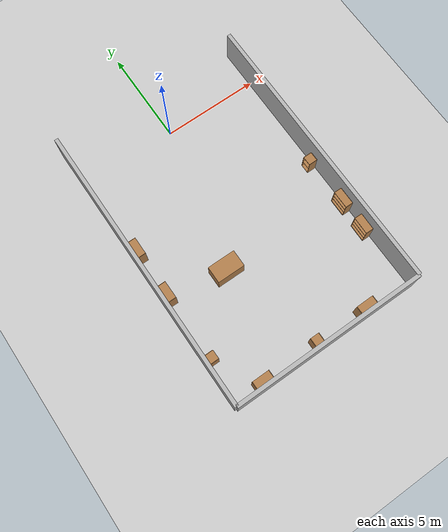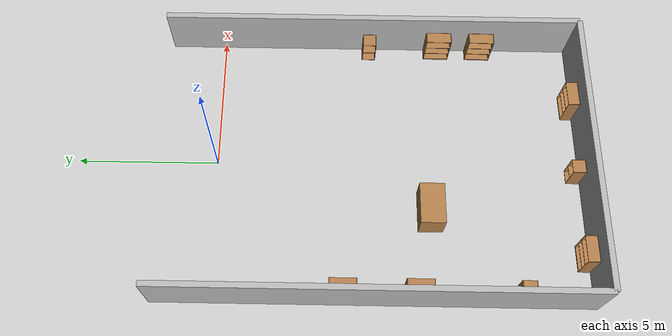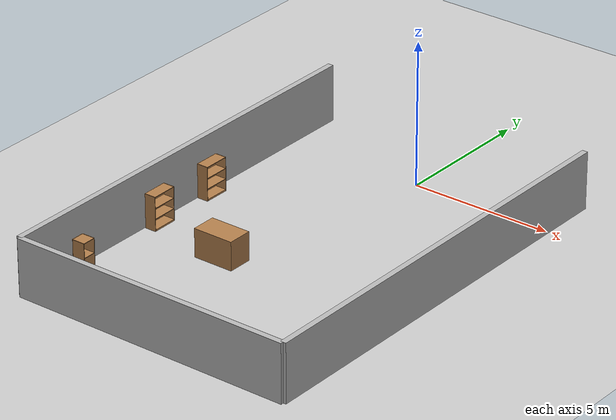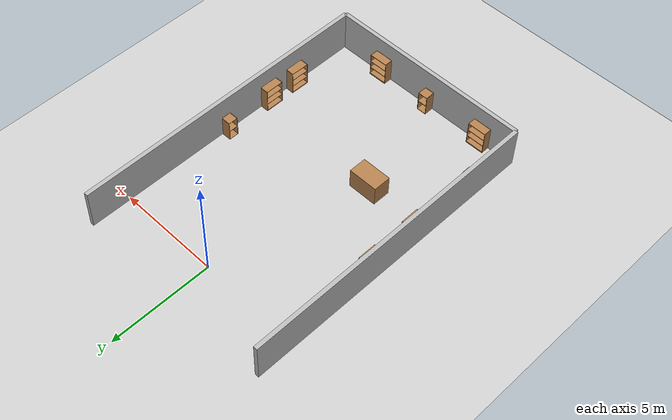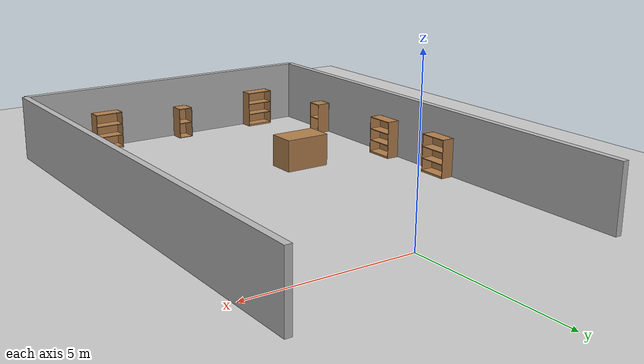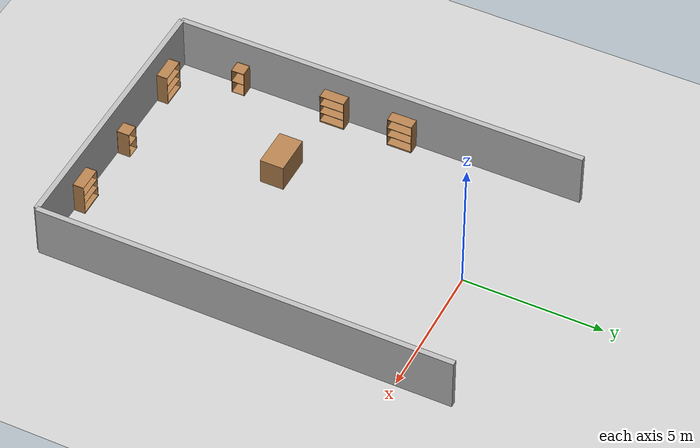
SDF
<sdf version="1.7">
 <world name="default">
  <model name="ground_plane">
   <static>1</static>
   <link name="link">
    <collision name="collision">
     <geometry><plane><normal>0 0 1</normal><size>100 100</size></plane></geometry>
     <surface><friction><ode><mu>100</mu><mu2>50</mu2></ode></friction></surface>
    </collision>
    <visual name="visual">
     <cast_shadows>0</cast_shadows>
     <geometry><plane><normal>0 0 1</normal><size>100 100</size></plane></geometry>
     <material>
      <script><uri>file://media/materials/scripts/gazebo.material</uri><name>Gazebo/Grey</name></script>
     </material>
    </visual>
    <velocity_decay><linear>0</linear><angular>0</angular></velocity_decay>
   </link>
  </model>
  <model name="wall_1_model">
   <pose>0 -13 1 0 -0 0</pose>
   <static>1</static>
   <link name="wall_1_body">
    <inertial>
     <mass>1</mass>
     <inertia><ixx>1</ixx><ixy>0</ixy><ixz>0</ixz><iyy>1</iyy><iyz>0</iyz><izz>1</izz></inertia>
    </inertial>
    <collision name="collision"><geometry><box><size>10 0.2 2</size></box></geometry></collision>
    <visual name="visual"><geometry><box><size>10 0.2 2</size></box></geometry></visual>
    <velocity_decay><linear>0</linear><angular>0</angular></velocity_decay>
   </link>
  </model>
  <model name="wall_3_model">
   <pose>-5 -5.5 1 0 -0 0</pose>
   <static>1</static>
   <link name="wall_3_body">
    <inertial>
     <mass>1</mass>
     <inertia><ixx>1</ixx><ixy>0</ixy><ixz>0</ixz><iyy>1</iyy><iyz>0</iyz><izz>1</izz></inertia>
    </inertial>
    <collision name="collision"><geometry><box><size>0.2 15 2</size></box></geometry></collision>
    <visual name="visual"><geometry><box><size>0.2 15 2</size></box></geometry></visual>
    <velocity_decay><linear>0</linear><angular>0</angular></velocity_decay>
   </link>
  </model>
  <model name="wall_4_model">
   <pose>5 -5.5 1 0 -0 0</pose>
   <static>1</static>
   <link name="wall_4_body">
    <inertial>
     <mass>1</mass>
     <inertia><ixx>1</ixx><ixy>0</ixy><ixz>0</ixz><iyy>1</iyy><iyz>0</iyz><izz>1</izz></inertia>
    </inertial>
    <collision name="collision"><geometry><box><size>0.2 15 2</size></box></geometry></collision>
    <visual name="visual"><geometry><box><size>0.2 15 2</size></box></geometry></visual>
    <velocity_decay><linear>0</linear><angular>0</angular></velocity_decay>
   </link>
  </model>
  <model name="cabinet_0">
   <static>0</static>
   <link name="cabinet_bottom_plate">
    <inertial>
     <pose>0 0 -1 0 -0 0</pose>
     <inertia><ixx>2.05</ixx><ixy>0</ixy><ixz>0</ixz><iyy>2.05</iyy><iyz>0</iyz><izz>2.05</izz></inertia>
     <mass>25</mass>
    </inertial>
    <collision name="cabinet_bottom_plate_geom">
     <pose>0 0 0.01 0 -0 0</pose>
     <geometry><box><size>0.45 0.45 0.02</size></box></geometry>
    </collision>
    <visual name="cabinet_bottom_plate_geom_visual">
     <pose>0 0 0.01 0 -0 0</pose>
     <geometry><box><size>0.45 0.45 0.02</size></box></geometry>
     <material>
      <script><uri>file://media/materials/scripts/gazebo.material</uri><name>Gazebo/Wood</name></script>
     </material>
    </visual>
    <collision name="cabinet_bottom_plate_geom_cabinet_back_plate">
     <pose>0.235 0 0.51 0 -0 0</pose>
     <geometry><box><size>0.02 0.45 1.02</size></box></geometry>
    </collision>
    <visual name="cabinet_bottom_plate_geom_cabinet_back_plate_visual">
     <pose>0.235 0 0.51 0 -0 0</pose>
     <geometry><box><size>0.02 0.45 1.02</size></box></geometry>
     <material>
      <script><uri>file://media/materials/scripts/gazebo.material</uri><name>Gazebo/Wood</name></script>
     </material>
    </visual>
    <collision name="cabinet_bottom_plate_geom_cabinet_left_plate">
     <pose>0 0.235 0.51 0 -0 0</pose>
     <geometry><box><size>0.45 0.02 1.02</size></box></geometry>
    </collision>
    <visual name="cabinet_bottom_plate_geom_cabinet_left_plate_visual">
     <pose>0 0.235 0.51 0 -0 0</pose>
     <geometry><box><size>0.45 0.02 1.02</size></box></geometry>
     <material>
      <script><uri>file://media/materials/scripts/gazebo.material</uri><name>Gazebo/Wood</name></script>
     </material>
    </visual>
    <collision name="cabinet_bottom_plate_geom_cabinet_middle_plate">
     <pose>0 0 0.51 0 -0 0</pose>
     <geometry><box><size>0.45 0.45 0.02</size></box></geometry>
    </collision>
    <visual name="cabinet_bottom_plate_geom_cabinet_middle_plate_visual">
     <pose>0 0 0.51 0 -0 0</pose>
     <geometry><box><size>0.45 0.45 0.02</size></box></geometry>
     <material>
      <script><uri>file://media/materials/scripts/gazebo.material</uri><name>Gazebo/Wood</name></script>
     </material>
    </visual>
    <collision name="cabinet_bottom_plate_geom_cabinet_right_plate">
     <pose>0 -0.235 0.51 0 -0 0</pose>
     <geometry><box><size>0.45 0.02 1.02</size></box></geometry>
    </collision>
    <visual name="cabinet_bottom_plate_geom_cabinet_right_plate_visual">
     <pose>0 -0.235 0.51 0 -0 0</pose>
     <geometry><box><size>0.45 0.02 1.02</size></box></geometry>
     <material>
      <script><uri>file://media/materials/scripts/gazebo.material</uri><name>Gazebo/Wood</name></script>
     </material>
    </visual>
    <collision name="cabinet_bottom_plate_geom_cabinet_top_plate">
     <pose>0 0 1.01 0 -0 0</pose>
     <geometry><box><size>0.45 0.45 0.02</size></box></geometry>
    </collision>
    <visual name="cabinet_bottom_plate_geom_cabinet_top_plate_visual">
     <pose>0 0 1.01 0 -0 0</pose>
     <geometry><box><size>0.45 0.45 0.02</size></box></geometry>
     <material>
      <script><uri>file://media/materials/scripts/gazebo.material</uri><name>Gazebo/Wood</name></script>
     </material>
    </visual>
    <velocity_decay><linear>0</linear><angular>0</angular></velocity_decay>
   </link>
   <pose>4.65183 -5.43985 -2e-06 0 1e-06 0.000758</pose>
  </model>
  <model name="bookshelf">
   <static>0</static>
   <link name="link">
    <inertial>
     <mass>1</mass>
     <inertia><ixx>1</ixx><ixy>0</ixy><ixz>0</ixz><iyy>1</iyy><iyz>0</iyz><izz>1</izz></inertia>
    </inertial>
    <collision name="back">
     <pose>0 0.005 0.6 0 -0 0</pose>
     <geometry><box><size>0.9 0.01 1.2</size></box></geometry>
    </collision>
    <visual name="visual1">
     <pose>0 0.005 0.6 0 -0 0</pose>
     <geometry><box><size>0.9 0.01 1.2</size></box></geometry>
     <material>
      <script><uri>file://media/materials/scripts/gazebo.material</uri><name>Gazebo/Wood</name></script>
     </material>
    </visual>
    <collision name="left_side">
     <pose>0.45 -0.195 0.6 0 -0 0</pose>
     <geometry><box><size>0.02 0.4 1.2</size></box></geometry>
    </collision>
    <visual name="visual2">
     <pose>0.45 -0.195 0.6 0 -0 0</pose>
     <geometry><box><size>0.02 0.4 1.2</size></box></geometry>
     <material>
      <script><uri>file://media/materials/scripts/gazebo.material</uri><name>Gazebo/Wood</name></script>
     </material>
    </visual>
    <collision name="right_side">
     <pose>-0.45 -0.195 0.6 0 -0 0</pose>
     <geometry><box><size>0.02 0.4 1.2</size></box></geometry>
    </collision>
    <visual name="visual3">
     <pose>-0.45 -0.195 0.6 0 -0 0</pose>
     <geometry><box><size>0.02 0.4 1.2</size></box></geometry>
     <material>
      <script><uri>file://media/materials/scripts/gazebo.material</uri><name>Gazebo/Wood</name></script>
     </material>
    </visual>
    <collision name="bottom">
     <pose>0 -0.195 0.03 0 -0 0</pose>
     <geometry><box><size>0.88 0.4 0.06</size></box></geometry>
    </collision>
    <visual name="visual4">
     <pose>0 -0.195 0.03 0 -0 0</pose>
     <geometry><box><size>0.88 0.4 0.06</size></box></geometry>
     <material>
      <script><uri>file://media/materials/scripts/gazebo.material</uri><name>Gazebo/Wood</name></script>
     </material>
    </visual>
    <collision name="top">
     <pose>0 -0.195 1.19 0 -0 0</pose>
     <geometry><box><size>0.88 0.4 0.02</size></box></geometry>
    </collision>
    <visual name="visual5">
     <pose>0 -0.195 1.19 0 -0 0</pose>
     <geometry><box><size>0.88 0.4 0.02</size></box></geometry>
     <material>
      <script><uri>file://media/materials/scripts/gazebo.material</uri><name>Gazebo/Wood</name></script>
     </material>
    </visual>
    <collision name="low_shelf">
     <pose>0 -0.195 0.43 0 -0 0</pose>
     <geometry><box><size>0.88 0.4 0.02</size></box></geometry>
    </collision>
    <visual name="visual6">
     <pose>0 -0.195 0.43 0 -0 0</pose>
     <geometry><box><size>0.88 0.4 0.02</size></box></geometry>
     <material>
      <script><uri>file://media/materials/scripts/gazebo.material</uri><name>Gazebo/Wood</name></script>
     </material>
    </visual>
    <collision name="high_shelf">
     <pose>0 -0.195 0.8 0 -0 0</pose>
     <geometry><box><size>0.88 0.4 0.02</size></box></geometry>
    </collision>
    <visual name="visual7">
     <pose>0 -0.195 0.8 0 -0 0</pose>
     <geometry><box><size>0.88 0.4 0.02</size></box></geometry>
     <material>
      <script><uri>file://media/materials/scripts/gazebo.material</uri><name>Gazebo/Wood</name></script>
     </material>
    </visual>
    <velocity_decay><linear>0</linear><angular>0</angular></velocity_decay>
   </link>
   <pose>4.88139 -9.56645 9e-06 4e-06 -7.5e-05 -1.5884</pose>
  </model>
  <model name="bookshelf_2">
   <static>0</static>
   <link name="link">
    <inertial>
     <mass>1</mass>
     <inertia><ixx>1</ixx><ixy>0</ixy><ixz>0</ixz><iyy>1</iyy><iyz>0</iyz><izz>1</izz></inertia>
    </inertial>
    <collision name="back">
     <pose>0 0.005 0.6 0 -0 0</pose>
     <geometry><box><size>0.9 0.01 1.2</size></box></geometry>
    </collision>
    <visual name="visual1">
     <pose>0 0.005 0.6 0 -0 0</pose>
     <geometry><box><size>0.9 0.01 1.2</size></box></geometry>
     <material>
      <script><uri>file://media/materials/scripts/gazebo.material</uri><name>Gazebo/Wood</name></script>
     </material>
    </visual>
    <collision name="left_side">
     <pose>0.45 -0.195 0.6 0 -0 0</pose>
     <geometry><box><size>0.02 0.4 1.2</size></box></geometry>
    </collision>
    <visual name="visual2">
     <pose>0.45 -0.195 0.6 0 -0 0</pose>
     <geometry><box><size>0.02 0.4 1.2</size></box></geometry>
     <material>
      <script><uri>file://media/materials/scripts/gazebo.material</uri><name>Gazebo/Wood</name></script>
     </material>
    </visual>
    <collision name="right_side">
     <pose>-0.45 -0.195 0.6 0 -0 0</pose>
     <geometry><box><size>0.02 0.4 1.2</size></box></geometry>
    </collision>
    <visual name="visual3">
     <pose>-0.45 -0.195 0.6 0 -0 0</pose>
     <geometry><box><size>0.02 0.4 1.2</size></box></geometry>
     <material>
      <script><uri>file://media/materials/scripts/gazebo.material</uri><name>Gazebo/Wood</name></script>
     </material>
    </visual>
    <collision name="bottom">
     <pose>0 -0.195 0.03 0 -0 0</pose>
     <geometry><box><size>0.88 0.4 0.06</size></box></geometry>
    </collision>
    <visual name="visual4">
     <pose>0 -0.195 0.03 0 -0 0</pose>
     <geometry><box><size>0.88 0.4 0.06</size></box></geometry>
     <material>
      <script><uri>file://media/materials/scripts/gazebo.material</uri><name>Gazebo/Wood</name></script>
     </material>
    </visual>
    <collision name="top">
     <pose>0 -0.195 1.19 0 -0 0</pose>
     <geometry><box><size>0.88 0.4 0.02</size></box></geometry>
    </collision>
    <visual name="visual5">
     <pose>0 -0.195 1.19 0 -0 0</pose>
     <geometry><box><size>0.88 0.4 0.02</size></box></geometry>
     <material>
      <script><uri>file://media/materials/scripts/gazebo.material</uri><name>Gazebo/Wood</name></script>
     </material>
    </visual>
    <collision name="low_shelf">
     <pose>0 -0.195 0.43 0 -0 0</pose>
     <geometry><box><size>0.88 0.4 0.02</size></box></geometry>
    </collision>
    <visual name="visual6">
     <pose>0 -0.195 0.43 0 -0 0</pose>
     <geometry><box><size>0.88 0.4 0.02</size></box></geometry>
     <material>
      <script><uri>file://media/materials/scripts/gazebo.material</uri><name>Gazebo/Wood</name></script>
     </material>
    </visual>
    <collision name="high_shelf">
     <pose>0 -0.195 0.8 0 -0 0</pose>
     <geometry><box><size>0.88 0.4 0.02</size></box></geometry>
    </collision>
    <visual name="visual7">
     <pose>0 -0.195 0.8 0 -0 0</pose>
     <geometry><box><size>0.88 0.4 0.02</size></box></geometry>
     <material>
      <script><uri>file://media/materials/scripts/gazebo.material</uri><name>Gazebo/Wood</name></script>
     </material>
    </visual>
    <velocity_decay><linear>0</linear><angular>0</angular></velocity_decay>
   </link>
   <pose>-4.86972 -7.01077 1e-06 1e-06 7.2e-05 1.57822</pose>
  </model>
  <model name="bookshelf_3">
   <static>0</static>
   <link name="link">
    <inertial>
     <mass>1</mass>
     <inertia><ixx>1</ixx><ixy>0</ixy><ixz>0</ixz><iyy>1</iyy><iyz>0</iyz><izz>1</izz></inertia>
    </inertial>
    <collision name="back">
     <pose>0 0.005 0.6 0 -0 0</pose>
     <geometry><box><size>0.9 0.01 1.2</size></box></geometry>
    </collision>
    <visual name="visual1">
     <pose>0 0.005 0.6 0 -0 0</pose>
     <geometry><box><size>0.9 0.01 1.2</size></box></geometry>
     <material>
      <script><uri>file://media/materials/scripts/gazebo.material</uri><name>Gazebo/Wood</name></script>
     </material>
    </visual>
    <collision name="left_side">
     <pose>0.45 -0.195 0.6 0 -0 0</pose>
     <geometry><box><size>0.02 0.4 1.2</size></box></geometry>
    </collision>
    <visual name="visual2">
     <pose>0.45 -0.195 0.6 0 -0 0</pose>
     <geometry><box><size>0.02 0.4 1.2</size></box></geometry>
     <material>
      <script><uri>file://media/materials/scripts/gazebo.material</uri><name>Gazebo/Wood</name></script>
     </material>
    </visual>
    <collision name="right_side">
     <pose>-0.45 -0.195 0.6 0 -0 0</pose>
     <geometry><box><size>0.02 0.4 1.2</size></box></geometry>
    </collision>
    <visual name="visual3">
     <pose>-0.45 -0.195 0.6 0 -0 0</pose>
     <geometry><box><size>0.02 0.4 1.2</size></box></geometry>
     <material>
      <script><uri>file://media/materials/scripts/gazebo.material</uri><name>Gazebo/Wood</name></script>
     </material>
    </visual>
    <collision name="bottom">
     <pose>0 -0.195 0.03 0 -0 0</pose>
     <geometry><box><size>0.88 0.4 0.06</size></box></geometry>
    </collision>
    <visual name="visual4">
     <pose>0 -0.195 0.03 0 -0 0</pose>
     <geometry><box><size>0.88 0.4 0.06</size></box></geometry>
     <material>
      <script><uri>file://media/materials/scripts/gazebo.material</uri><name>Gazebo/Wood</name></script>
     </material>
    </visual>
    <collision name="top">
     <pose>0 -0.195 1.19 0 -0 0</pose>
     <geometry><box><size>0.88 0.4 0.02</size></box></geometry>
    </collision>
    <visual name="visual5">
     <pose>0 -0.195 1.19 0 -0 0</pose>
     <geometry><box><size>0.88 0.4 0.02</size></box></geometry>
     <material>
      <script><uri>file://media/materials/scripts/gazebo.material</uri><name>Gazebo/Wood</name></script>
     </material>
    </visual>
    <collision name="low_shelf">
     <pose>0 -0.195 0.43 0 -0 0</pose>
     <geometry><box><size>0.88 0.4 0.02</size></box></geometry>
    </collision>
    <visual name="visual6">
     <pose>0 -0.195 0.43 0 -0 0</pose>
     <geometry><box><size>0.88 0.4 0.02</size></box></geometry>
     <material>
      <script><uri>file://media/materials/scripts/gazebo.material</uri><name>Gazebo/Wood</name></script>
     </material>
    </visual>
    <collision name="high_shelf">
     <pose>0 -0.195 0.8 0 -0 0</pose>
     <geometry><box><size>0.88 0.4 0.02</size></box></geometry>
    </collision>
    <visual name="visual7">
     <pose>0 -0.195 0.8 0 -0 0</pose>
     <geometry><box><size>0.88 0.4 0.02</size></box></geometry>
     <material>
      <script><uri>file://media/materials/scripts/gazebo.material</uri><name>Gazebo/Wood</name></script>
     </material>
    </visual>
    <velocity_decay><linear>0</linear><angular>0</angular></velocity_decay>
   </link>
   <pose>2.43147 -12.8834 6.6e-05 7.5e-05 3e-06 -3.13362</pose>
  </model>
  <model name="bookshelf_4">
   <static>0</static>
   <link name="link">
    <inertial>
     <mass>1</mass>
     <inertia><ixx>1</ixx><ixy>0</ixy><ixz>0</ixz><iyy>1</iyy><iyz>0</iyz><izz>1</izz></inertia>
    </inertial>
    <collision name="back">
     <pose>0 0.005 0.6 0 -0 0</pose>
     <geometry><box><size>0.9 0.01 1.2</size></box></geometry>
    </collision>
    <visual name="visual1">
     <pose>0 0.005 0.6 0 -0 0</pose>
     <geometry><box><size>0.9 0.01 1.2</size></box></geometry>
     <material>
      <script><uri>file://media/materials/scripts/gazebo.material</uri><name>Gazebo/Wood</name></script>
     </material>
    </visual>
    <collision name="left_side">
     <pose>0.45 -0.195 0.6 0 -0 0</pose>
     <geometry><box><size>0.02 0.4 1.2</size></box></geometry>
    </collision>
    <visual name="visual2">
     <pose>0.45 -0.195 0.6 0 -0 0</pose>
     <geometry><box><size>0.02 0.4 1.2</size></box></geometry>
     <material>
      <script><uri>file://media/materials/scripts/gazebo.material</uri><name>Gazebo/Wood</name></script>
     </material>
    </visual>
    <collision name="right_side">
     <pose>-0.45 -0.195 0.6 0 -0 0</pose>
     <geometry><box><size>0.02 0.4 1.2</size></box></geometry>
    </collision>
    <visual name="visual3">
     <pose>-0.45 -0.195 0.6 0 -0 0</pose>
     <geometry><box><size>0.02 0.4 1.2</size></box></geometry>
     <material>
      <script><uri>file://media/materials/scripts/gazebo.material</uri><name>Gazebo/Wood</name></script>
     </material>
    </visual>
    <collision name="bottom">
     <pose>0 -0.195 0.03 0 -0 0</pose>
     <geometry><box><size>0.88 0.4 0.06</size></box></geometry>
    </collision>
    <visual name="visual4">
     <pose>0 -0.195 0.03 0 -0 0</pose>
     <geometry><box><size>0.88 0.4 0.06</size></box></geometry>
     <material>
      <script><uri>file://media/materials/scripts/gazebo.material</uri><name>Gazebo/Wood</name></script>
     </material>
    </visual>
    <collision name="top">
     <pose>0 -0.195 1.19 0 -0 0</pose>
     <geometry><box><size>0.88 0.4 0.02</size></box></geometry>
    </collision>
    <visual name="visual5">
     <pose>0 -0.195 1.19 0 -0 0</pose>
     <geometry><box><size>0.88 0.4 0.02</size></box></geometry>
     <material>
      <script><uri>file://media/materials/scripts/gazebo.material</uri><name>Gazebo/Wood</name></script>
     </material>
    </visual>
    <collision name="low_shelf">
     <pose>0 -0.195 0.43 0 -0 0</pose>
     <geometry><box><size>0.88 0.4 0.02</size></box></geometry>
    </collision>
    <visual name="visual6">
     <pose>0 -0.195 0.43 0 -0 0</pose>
     <geometry><box><size>0.88 0.4 0.02</size></box></geometry>
     <material>
      <script><uri>file://media/materials/scripts/gazebo.material</uri><name>Gazebo/Wood</name></script>
     </material>
    </visual>
    <collision name="high_shelf">
     <pose>0 -0.195 0.8 0 -0 0</pose>
     <geometry><box><size>0.88 0.4 0.02</size></box></geometry>
    </collision>
    <visual name="visual7">
     <pose>0 -0.195 0.8 0 -0 0</pose>
     <geometry><box><size>0.88 0.4 0.02</size></box></geometry>
     <material>
      <script><uri>file://media/materials/scripts/gazebo.material</uri><name>Gazebo/Wood</name></script>
     </material>
    </visual>
    <velocity_decay><linear>0</linear><angular>0</angular></velocity_decay>
   </link>
   <pose>4.88559 -7.99576 1e-06 0 -6.4e-05 -1.57572</pose>
  </model>
  <model name="bookshelf_5">
   <static>0</static>
   <link name="link">
    <inertial>
     <mass>1</mass>
     <inertia><ixx>1</ixx><ixy>0</ixy><ixz>0</ixz><iyy>1</iyy><iyz>0</iyz><izz>1</izz></inertia>
    </inertial>
    <collision name="back">
     <pose>0 0.005 0.6 0 -0 0</pose>
     <geometry><box><size>0.9 0.01 1.2</size></box></geometry>
    </collision>
    <visual name="visual1">
     <pose>0 0.005 0.6 0 -0 0</pose>
     <geometry><box><size>0.9 0.01 1.2</size></box></geometry>
     <material>
      <script><uri>file://media/materials/scripts/gazebo.material</uri><name>Gazebo/Wood</name></script>
     </material>
    </visual>
    <collision name="left_side">
     <pose>0.45 -0.195 0.6 0 -0 0</pose>
     <geometry><box><size>0.02 0.4 1.2</size></box></geometry>
    </collision>
    <visual name="visual2">
     <pose>0.45 -0.195 0.6 0 -0 0</pose>
     <geometry><box><size>0.02 0.4 1.2</size></box></geometry>
     <material>
      <script><uri>file://media/materials/scripts/gazebo.material</uri><name>Gazebo/Wood</name></script>
     </material>
    </visual>
    <collision name="right_side">
     <pose>-0.45 -0.195 0.6 0 -0 0</pose>
     <geometry><box><size>0.02 0.4 1.2</size></box></geometry>
    </collision>
    <visual name="visual3">
     <pose>-0.45 -0.195 0.6 0 -0 0</pose>
     <geometry><box><size>0.02 0.4 1.2</size></box></geometry>
     <material>
      <script><uri>file://media/materials/scripts/gazebo.material</uri><name>Gazebo/Wood</name></script>
     </material>
    </visual>
    <collision name="bottom">
     <pose>0 -0.195 0.03 0 -0 0</pose>
     <geometry><box><size>0.88 0.4 0.06</size></box></geometry>
    </collision>
    <visual name="visual4">
     <pose>0 -0.195 0.03 0 -0 0</pose>
     <geometry><box><size>0.88 0.4 0.06</size></box></geometry>
     <material>
      <script><uri>file://media/materials/scripts/gazebo.material</uri><name>Gazebo/Wood</name></script>
     </material>
    </visual>
    <collision name="top">
     <pose>0 -0.195 1.19 0 -0 0</pose>
     <geometry><box><size>0.88 0.4 0.02</size></box></geometry>
    </collision>
    <visual name="visual5">
     <pose>0 -0.195 1.19 0 -0 0</pose>
     <geometry><box><size>0.88 0.4 0.02</size></box></geometry>
     <material>
      <script><uri>file://media/materials/scripts/gazebo.material</uri><name>Gazebo/Wood</name></script>
     </material>
    </visual>
    <collision name="low_shelf">
     <pose>0 -0.195 0.43 0 -0 0</pose>
     <geometry><box><size>0.88 0.4 0.02</size></box></geometry>
    </collision>
    <visual name="visual6">
     <pose>0 -0.195 0.43 0 -0 0</pose>
     <geometry><box><size>0.88 0.4 0.02</size></box></geometry>
     <material>
      <script><uri>file://media/materials/scripts/gazebo.material</uri><name>Gazebo/Wood</name></script>
     </material>
    </visual>
    <collision name="high_shelf">
     <pose>0 -0.195 0.8 0 -0 0</pose>
     <geometry><box><size>0.88 0.4 0.02</size></box></geometry>
    </collision>
    <visual name="visual7">
     <pose>0 -0.195 0.8 0 -0 0</pose>
     <geometry><box><size>0.88 0.4 0.02</size></box></geometry>
     <material>
      <script><uri>file://media/materials/scripts/gazebo.material</uri><name>Gazebo/Wood</name></script>
     </material>
    </visual>
    <velocity_decay><linear>0</linear><angular>0</angular></velocity_decay>
   </link>
   <pose>-3.37078 -12.8838 5.6e-05 7.5e-05 3e-06 -3.13747</pose>
  </model>
  <model name="bookshelf_6">
   <static>0</static>
   <link name="link">
    <inertial>
     <mass>1</mass>
     <inertia><ixx>1</ixx><ixy>0</ixy><ixz>0</ixz><iyy>1</iyy><iyz>0</iyz><izz>1</izz></inertia>
    </inertial>
    <collision name="back">
     <pose>0 0.005 0.6 0 -0 0</pose>
     <geometry><box><size>0.9 0.01 1.2</size></box></geometry>
    </collision>
    <visual name="visual1">
     <pose>0 0.005 0.6 0 -0 0</pose>
     <geometry><box><size>0.9 0.01 1.2</size></box></geometry>
     <material>
      <script><uri>file://media/materials/scripts/gazebo.material</uri><name>Gazebo/Wood</name></script>
     </material>
    </visual>
    <collision name="left_side">
     <pose>0.45 -0.195 0.6 0 -0 0</pose>
     <geometry><box><size>0.02 0.4 1.2</size></box></geometry>
    </collision>
    <visual name="visual2">
     <pose>0.45 -0.195 0.6 0 -0 0</pose>
     <geometry><box><size>0.02 0.4 1.2</size></box></geometry>
     <material>
      <script><uri>file://media/materials/scripts/gazebo.material</uri><name>Gazebo/Wood</name></script>
     </material>
    </visual>
    <collision name="right_side">
     <pose>-0.45 -0.195 0.6 0 -0 0</pose>
     <geometry><box><size>0.02 0.4 1.2</size></box></geometry>
    </collision>
    <visual name="visual3">
     <pose>-0.45 -0.195 0.6 0 -0 0</pose>
     <geometry><box><size>0.02 0.4 1.2</size></box></geometry>
     <material>
      <script><uri>file://media/materials/scripts/gazebo.material</uri><name>Gazebo/Wood</name></script>
     </material>
    </visual>
    <collision name="bottom">
     <pose>0 -0.195 0.03 0 -0 0</pose>
     <geometry><box><size>0.88 0.4 0.06</size></box></geometry>
    </collision>
    <visual name="visual4">
     <pose>0 -0.195 0.03 0 -0 0</pose>
     <geometry><box><size>0.88 0.4 0.06</size></box></geometry>
     <material>
      <script><uri>file://media/materials/scripts/gazebo.material</uri><name>Gazebo/Wood</name></script>
     </material>
    </visual>
    <collision name="top">
     <pose>0 -0.195 1.19 0 -0 0</pose>
     <geometry><box><size>0.88 0.4 0.02</size></box></geometry>
    </collision>
    <visual name="visual5">
     <pose>0 -0.195 1.19 0 -0 0</pose>
     <geometry><box><size>0.88 0.4 0.02</size></box></geometry>
     <material>
      <script><uri>file://media/materials/scripts/gazebo.material</uri><name>Gazebo/Wood</name></script>
     </material>
    </visual>
    <collision name="low_shelf">
     <pose>0 -0.195 0.43 0 -0 0</pose>
     <geometry><box><size>0.88 0.4 0.02</size></box></geometry>
    </collision>
    <visual name="visual6">
     <pose>0 -0.195 0.43 0 -0 0</pose>
     <geometry><box><size>0.88 0.4 0.02</size></box></geometry>
     <material>
      <script><uri>file://media/materials/scripts/gazebo.material</uri><name>Gazebo/Wood</name></script>
     </material>
    </visual>
    <collision name="high_shelf">
     <pose>0 -0.195 0.8 0 -0 0</pose>
     <geometry><box><size>0.88 0.4 0.02</size></box></geometry>
    </collision>
    <visual name="visual7">
     <pose>0 -0.195 0.8 0 -0 0</pose>
     <geometry><box><size>0.88 0.4 0.02</size></box></geometry>
     <material>
      <script><uri>file://media/materials/scripts/gazebo.material</uri><name>Gazebo/Wood</name></script>
     </material>
    </visual>
    <velocity_decay><linear>0</linear><angular>0</angular></velocity_decay>
   </link>
   <pose>-4.88331 -4.47455 -6.6e-05 0 6.7e-05 1.57025</pose>
  </model>
  <model name="cabinet_1_clone">
   <static>0</static>
   <link name="cabinet_bottom_plate">
    <inertial>
     <pose>0 0 -1 0 -0 0</pose>
     <inertia><ixx>2.05</ixx><ixy>0</ixy><ixz>0</ixz><iyy>2.05</iyy><iyz>0</iyz><izz>2.05</izz></inertia>
     <mass>25</mass>
    </inertial>
    <collision name="cabinet_bottom_plate_geom">
     <pose>0 0 0.01 0 -0 0</pose>
     <geometry><box><size>0.45 0.45 0.02</size></box></geometry>
    </collision>
    <visual name="cabinet_bottom_plate_geom_visual">
     <pose>0 0 0.01 0 -0 0</pose>
     <geometry><box><size>0.45 0.45 0.02</size></box></geometry>
     <material>
      <script><uri>file://media/materials/scripts/gazebo.material</uri><name>Gazebo/Wood</name></script>
     </material>
    </visual>
    <collision name="cabinet_bottom_plate_geom_cabinet_back_plate">
     <pose>0.235 0 0.51 0 -0 0</pose>
     <geometry><box><size>0.02 0.45 1.02</size></box></geometry>
    </collision>
    <visual name="cabinet_bottom_plate_geom_cabinet_back_plate_visual">
     <pose>0.235 0 0.51 0 -0 0</pose>
     <geometry><box><size>0.02 0.45 1.02</size></box></geometry>
     <material>
      <script><uri>file://media/materials/scripts/gazebo.material</uri><name>Gazebo/Wood</name></script>
     </material>
    </visual>
    <collision name="cabinet_bottom_plate_geom_cabinet_left_plate">
     <pose>0 0.235 0.51 0 -0 0</pose>
     <geometry><box><size>0.45 0.02 1.02</size></box></geometry>
    </collision>
    <visual name="cabinet_bottom_plate_geom_cabinet_left_plate_visual">
     <pose>0 0.235 0.51 0 -0 0</pose>
     <geometry><box><size>0.45 0.02 1.02</size></box></geometry>
     <material>
      <script><uri>file://media/materials/scripts/gazebo.material</uri><name>Gazebo/Wood</name></script>
     </material>
    </visual>
    <collision name="cabinet_bottom_plate_geom_cabinet_middle_plate">
     <pose>0 0 0.51 0 -0 0</pose>
     <geometry><box><size>0.45 0.45 0.02</size></box></geometry>
    </collision>
    <visual name="cabinet_bottom_plate_geom_cabinet_middle_plate_visual">
     <pose>0 0 0.51 0 -0 0</pose>
     <geometry><box><size>0.45 0.45 0.02</size></box></geometry>
     <material>
      <script><uri>file://media/materials/scripts/gazebo.material</uri><name>Gazebo/Wood</name></script>
     </material>
    </visual>
    <collision name="cabinet_bottom_plate_geom_cabinet_right_plate">
     <pose>0 -0.235 0.51 0 -0 0</pose>
     <geometry><box><size>0.45 0.02 1.02</size></box></geometry>
    </collision>
    <visual name="cabinet_bottom_plate_geom_cabinet_right_plate_visual">
     <pose>0 -0.235 0.51 0 -0 0</pose>
     <geometry><box><size>0.45 0.02 1.02</size></box></geometry>
     <material>
      <script><uri>file://media/materials/scripts/gazebo.material</uri><name>Gazebo/Wood</name></script>
     </material>
    </visual>
    <collision name="cabinet_bottom_plate_geom_cabinet_top_plate">
     <pose>0 0 1.01 0 -0 0</pose>
     <geometry><box><size>0.45 0.45 0.02</size></box></geometry>
    </collision>
    <visual name="cabinet_bottom_plate_geom_cabinet_top_plate_visual">
     <pose>0 0 1.01 0 -0 0</pose>
     <geometry><box><size>0.45 0.45 0.02</size></box></geometry>
     <material>
      <script><uri>file://media/materials/scripts/gazebo.material</uri><name>Gazebo/Wood</name></script>
     </material>
    </visual>
    <velocity_decay><linear>0</linear><angular>0</angular></velocity_decay>
   </link>
   <pose>-4.65276 -10.5758 0 0 -1e-06 -3.13143</pose>
  </model>
  <model name="cabinet_0_clone">
   <static>0</static>
   <link name="cabinet_bottom_plate">
    <inertial>
     <pose>0 0 -1 0 -0 0</pose>
     <inertia><ixx>2.05</ixx><ixy>0</ixy><ixz>0</ixz><iyy>2.05</iyy><iyz>0</iyz><izz>2.05</izz></inertia>
     <mass>25</mass>
    </inertial>
    <collision name="cabinet_bottom_plate_geom">
     <pose>0 0 0.01 0 -0 0</pose>
     <geometry><box><size>0.45 0.45 0.02</size></box></geometry>
    </collision>
    <visual name="cabinet_bottom_plate_geom_visual">
     <pose>0 0 0.01 0 -0 0</pose>
     <geometry><box><size>0.45 0.45 0.02</size></box></geometry>
     <material>
      <script><uri>file://media/materials/scripts/gazebo.material</uri><name>Gazebo/Wood</name></script>
     </material>
    </visual>
    <collision name="cabinet_bottom_plate_geom_cabinet_back_plate">
     <pose>0.235 0 0.51 0 -0 0</pose>
     <geometry><box><size>0.02 0.45 1.02</size></box></geometry>
    </collision>
    <visual name="cabinet_bottom_plate_geom_cabinet_back_plate_visual">
     <pose>0.235 0 0.51 0 -0 0</pose>
     <geometry><box><size>0.02 0.45 1.02</size></box></geometry>
     <material>
      <script><uri>file://media/materials/scripts/gazebo.material</uri><name>Gazebo/Wood</name></script>
     </material>
    </visual>
    <collision name="cabinet_bottom_plate_geom_cabinet_left_plate">
     <pose>0 0.235 0.51 0 -0 0</pose>
     <geometry><box><size>0.45 0.02 1.02</size></box></geometry>
    </collision>
    <visual name="cabinet_bottom_plate_geom_cabinet_left_plate_visual">
     <pose>0 0.235 0.51 0 -0 0</pose>
     <geometry><box><size>0.45 0.02 1.02</size></box></geometry>
     <material>
      <script><uri>file://media/materials/scripts/gazebo.material</uri><name>Gazebo/Wood</name></script>
     </material>
    </visual>
    <collision name="cabinet_bottom_plate_geom_cabinet_middle_plate">
     <pose>0 0 0.51 0 -0 0</pose>
     <geometry><box><size>0.45 0.45 0.02</size></box></geometry>
    </collision>
    <visual name="cabinet_bottom_plate_geom_cabinet_middle_plate_visual">
     <pose>0 0 0.51 0 -0 0</pose>
     <geometry><box><size>0.45 0.45 0.02</size></box></geometry>
     <material>
      <script><uri>file://media/materials/scripts/gazebo.material</uri><name>Gazebo/Wood</name></script>
     </material>
    </visual>
    <collision name="cabinet_bottom_plate_geom_cabinet_right_plate">
     <pose>0 -0.235 0.51 0 -0 0</pose>
     <geometry><box><size>0.45 0.02 1.02</size></box></geometry>
    </collision>
    <visual name="cabinet_bottom_plate_geom_cabinet_right_plate_visual">
     <pose>0 -0.235 0.51 0 -0 0</pose>
     <geometry><box><size>0.45 0.02 1.02</size></box></geometry>
     <material>
      <script><uri>file://media/materials/scripts/gazebo.material</uri><name>Gazebo/Wood</name></script>
     </material>
    </visual>
    <collision name="cabinet_bottom_plate_geom_cabinet_top_plate">
     <pose>0 0 1.01 0 -0 0</pose>
     <geometry><box><size>0.45 0.45 0.02</size></box></geometry>
    </collision>
    <visual name="cabinet_bottom_plate_geom_cabinet_top_plate_visual">
     <pose>0 0 1.01 0 -0 0</pose>
     <geometry><box><size>0.45 0.45 0.02</size></box></geometry>
     <material>
      <script><uri>file://media/materials/scripts/gazebo.material</uri><name>Gazebo/Wood</name></script>
     </material>
    </visual>
    <velocity_decay><linear>0</linear><angular>0</angular></velocity_decay>
   </link>
   <pose>-0.337851 -12.6475 -2e-06 -1e-06 -0 -1.57186</pose>
  </model>
  <model name="not-so-table_box">
   <pose>-1.76173 -7.53134 0.5 2e-06 -0 0</pose>
   <link name="link">
    <inertial>
     <mass>1</mass>
     <inertia>
      <ixx>0.166667</ixx>
      <ixy>0</ixy>
      <ixz>0</ixz>
      <iyy>0.166667</iyy>
      <iyz>0</iyz>
      <izz>0.166667</izz>
     </inertia>
    </inertial>
    <collision name="collision"><geometry><box><size>1.43694 0.864808 1</size></box></geometry></collision>
    <visual name="visual">
     <geometry><box><size>1.43694 0.864808 1</size></box></geometry>
     <material>
      <script><uri>file://media/materials/scripts/gazebo.material</uri><name>Gazebo/Wood</name></script>
     </material>
    </visual>
   </link>
  </model>
 </world>
</sdf>
